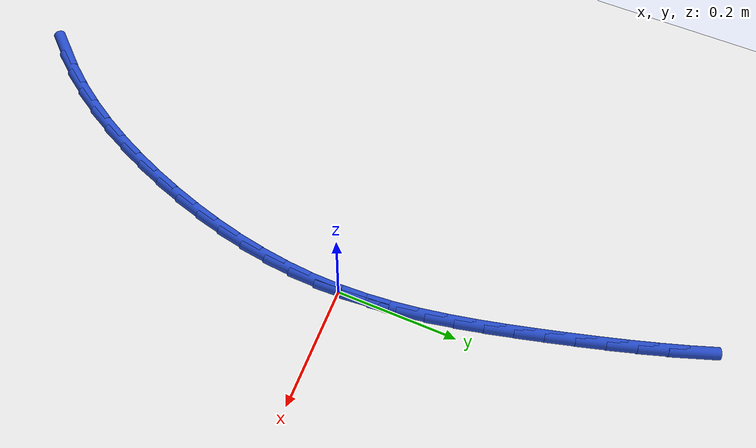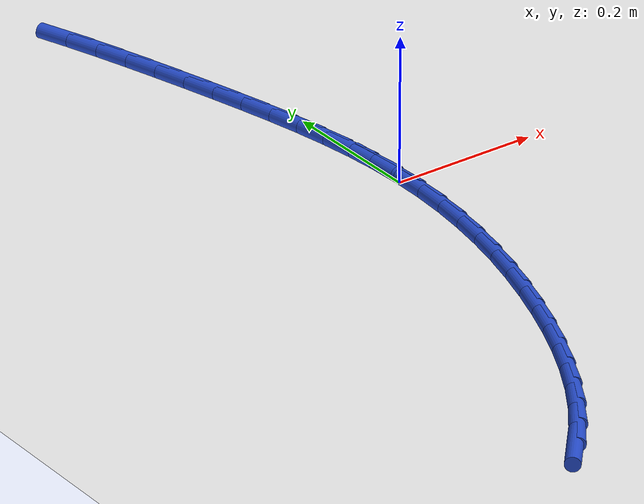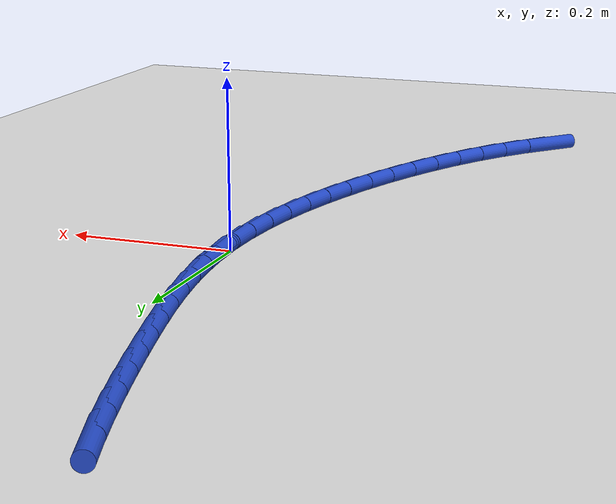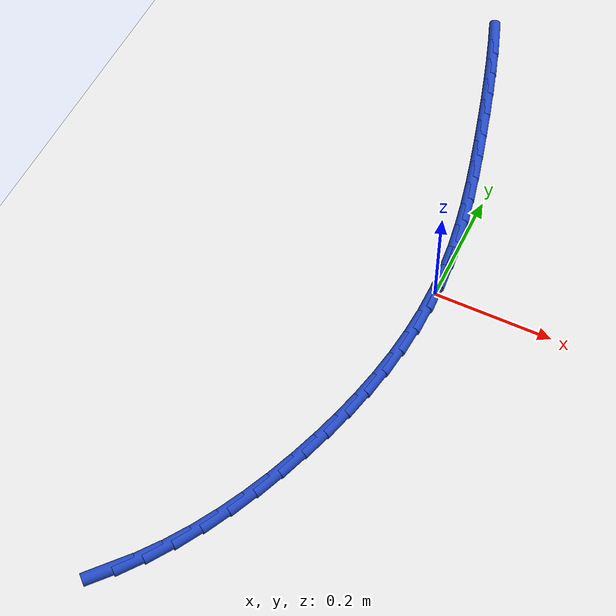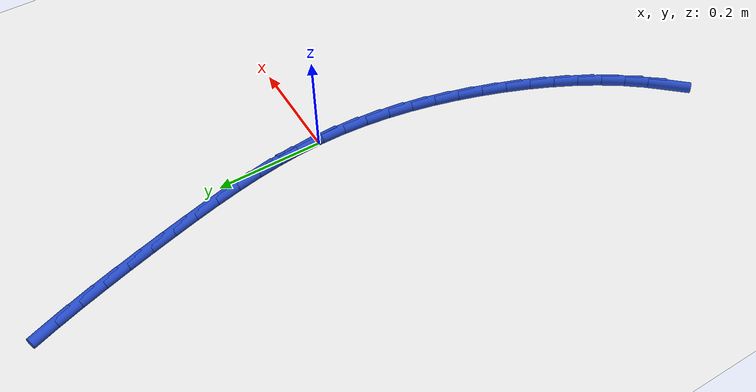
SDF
<sdf version="1.6">
 <world name="default">
  <model name="ground_plane">
   <static>1</static>
   <link name="link">
    <collision name="collision">
     <geometry><plane><normal>0 0 1</normal><size>100 100</size></plane></geometry>
     <surface><friction><ode><mu>100</mu><mu2>50</mu2></ode></friction></surface>
    </collision>
    <visual name="visual">
     <cast_shadows>0</cast_shadows>
     <geometry><plane><normal>0 0 1</normal><size>100 100</size></plane></geometry>
     <material>
      <script><uri>file://media/materials/scripts/gazebo.material</uri><name>Gazebo/WhiteGlow</name></script>
     </material>
    </visual>
   </link>
  </model>
  <model name="line">
   <link name="link_0">
    <pose>-1.214306433183765e-17 -2.0816681711721685e-17 0.01 0 1.57 -1.5239779968371987</pose>
    <collision name="collision">
     <geometry><cylinder><radius>0.01</radius><length>0.08</length></cylinder></geometry>
    </collision>
    <visual name="visual">
     <material>
      <script><name>Gazebo/Blue</name><uri>file://media/materials/scripts/gazebo.material</uri></script>
     </material>
     <geometry><cylinder><radius>0.01</radius><length>0.08</length></cylinder></geometry>
    </visual>
   </link>
   <link name="link_1">
    <pose>-0.0021245154504253992 0.04534469606206822 0.01 0 1.57 -1.4723712508912976</pose>
    <collision name="collision">
     <geometry><cylinder><radius>0.01</radius><length>0.08</length></cylinder></geometry>
    </collision>
    <visual name="visual">
     <material>
      <script><name>Gazebo/Blue</name><uri>file://media/materials/scripts/gazebo.material</uri></script>
     </material>
     <geometry><cylinder><radius>0.01</radius><length>0.08</length></cylinder></geometry>
    </visual>
   </link>
   <link name="link_2">
    <pose>-0.006593316319034097 0.09060105988212223 0.01 0 1.57 -1.4277021264202554</pose>
    <collision name="collision">
     <geometry><cylinder><radius>0.01</radius><length>0.08</length></cylinder></geometry>
    </collision>
    <visual name="visual">
     <material>
      <script><name>Gazebo/Blue</name><uri>file://media/materials/scripts/gazebo.material</uri></script>
     </material>
     <geometry><cylinder><radius>0.01</radius><length>0.08</length></cylinder></geometry>
    </visual>
   </link>
   <link name="link_3">
    <pose>-0.013106867148751604 0.13580927209531798 0.01 0 1.57 -1.3900747745297217</pose>
    <collision name="collision">
     <geometry><cylinder><radius>0.01</radius><length>0.08</length></cylinder></geometry>
    </collision>
    <visual name="visual">
     <material>
      <script><name>Gazebo/Blue</name><uri>file://media/materials/scripts/gazebo.material</uri></script>
     </material>
     <geometry><cylinder><radius>0.01</radius><length>0.08</length></cylinder></geometry>
    </visual>
   </link>
   <link name="link_4">
    <pose>-0.021365632482503442 0.18100951333681153 0.01 0 1.57 -1.3594540855634945</pose>
    <collision name="collision">
     <geometry><cylinder><radius>0.01</radius><length>0.08</length></cylinder></geometry>
    </collision>
    <visual name="visual">
     <material>
      <script><name>Gazebo/Blue</name><uri>file://media/materials/scripts/gazebo.material</uri></script>
     </material>
     <geometry><cylinder><radius>0.01</radius><length>0.08</length></cylinder></geometry>
    </visual>
   </link>
   <link name="link_5">
    <pose>-0.031070076863215074 0.2262419642417586 0.01 0 1.57 -1.3357225294616695</pose>
    <collision name="collision">
     <geometry><cylinder><radius>0.01</radius><length>0.08</length></cylinder></geometry>
    </collision>
    <visual name="visual">
     <material>
      <script><name>Gazebo/Blue</name><uri>file://media/materials/scripts/gazebo.material</uri></script>
     </material>
     <geometry><cylinder><radius>0.01</radius><length>0.08</length></cylinder></geometry>
    </visual>
   </link>
   <link name="link_6">
    <pose>-0.04192066483381203 0.27154680544531534 0.01 0 1.57 -1.3187257069923661</pose>
    <collision name="collision">
     <geometry><cylinder><radius>0.01</radius><length>0.08</length></cylinder></geometry>
    </collision>
    <visual name="visual">
     <material>
      <script><name>Gazebo/Blue</name><uri>file://media/materials/scripts/gazebo.material</uri></script>
     </material>
     <geometry><cylinder><radius>0.01</radius><length>0.08</length></cylinder></geometry>
    </visual>
   </link>
   <link name="link_7">
    <pose>-0.05361786093721979 0.31696421758263754 0.01 0 1.57 -1.308159948260188</pose>
    <collision name="collision">
     <geometry><cylinder><radius>0.01</radius><length>0.08</length></cylinder></geometry>
    </collision>
    <visual name="visual">
     <material>
      <script><name>Gazebo/Blue</name><uri>file://media/materials/scripts/gazebo.material</uri></script>
     </material>
     <geometry><cylinder><radius>0.01</radius><length>0.08</length></cylinder></geometry>
    </visual>
   </link>
   <link name="link_8">
    <pose>-0.06586847644041166 0.3625315450831043 0.01 0 1.57 -1.2996111981379848</pose>
    <collision name="collision">
     <geometry><cylinder><radius>0.01</radius><length>0.08</length></cylinder></geometry>
    </collision>
    <visual name="visual">
     <material>
      <script><name>Gazebo/Blue</name><uri>file://media/materials/scripts/gazebo.material</uri></script>
     </material>
     <geometry><cylinder><radius>0.01</radius><length>0.08</length></cylinder></geometry>
    </visual>
   </link>
   <link name="link_9">
    <pose>-0.07856656411448149 0.408202458431606 0.01 0 1.57 -1.2881421093520649</pose>
    <collision name="collision">
     <geometry><cylinder><radius>0.01</radius><length>0.08</length></cylinder></geometry>
    </collision>
    <visual name="visual">
     <material>
      <script><name>Gazebo/Blue</name><uri>file://media/materials/scripts/gazebo.material</uri></script>
     </material>
     <geometry><cylinder><radius>0.01</radius><length>0.08</length></cylinder></geometry>
    </visual>
   </link>
   <link name="link_10">
    <pose>-0.09181969453499594 0.453835211891065 0.01 0 1.57 -1.2734338293448058</pose>
    <collision name="collision">
     <geometry><cylinder><radius>0.01</radius><length>0.08</length></cylinder></geometry>
    </collision>
    <visual name="visual">
     <material>
      <script><name>Gazebo/Blue</name><uri>file://media/materials/scripts/gazebo.material</uri></script>
     </material>
     <geometry><cylinder><radius>0.01</radius><length>0.08</length></cylinder></geometry>
    </visual>
   </link>
   <link name="link_11">
    <pose>-0.10574706868791374 0.4992828623600799 0.01 0 1.57 -1.2553971416705523</pose>
    <collision name="collision">
     <geometry><cylinder><radius>0.01</radius><length>0.08</length></cylinder></geometry>
    </collision>
    <visual name="visual">
     <material>
      <script><name>Gazebo/Blue</name><uri>file://media/materials/scripts/gazebo.material</uri></script>
     </material>
     <geometry><cylinder><radius>0.01</radius><length>0.08</length></cylinder></geometry>
    </visual>
   </link>
   <link name="link_12">
    <pose>-0.12046788755919356 0.5443984667372487 0.01 0 1.57 -1.2339089826335756</pose>
    <collision name="collision">
     <geometry><cylinder><radius>0.01</radius><length>0.08</length></cylinder></geometry>
    </collision>
    <visual name="visual">
     <material>
      <script><name>Gazebo/Blue</name><uri>file://media/materials/scripts/gazebo.material</uri></script>
     </material>
     <geometry><cylinder><radius>0.01</radius><length>0.08</length></cylinder></geometry>
    </visual>
   </link>
   <link name="link_165">
    <pose>-0.2308420048764336 -0.63959557539281 0.01 0 1.57 0.8437210992109566</pose>
    <collision name="collision">
     <geometry><cylinder><radius>0.01</radius><length>0.08</length></cylinder></geometry>
    </collision>
    <visual name="visual">
     <material>
      <script><name>Gazebo/Blue</name><uri>file://media/materials/scripts/gazebo.material</uri></script>
     </material>
     <geometry><cylinder><radius>0.01</radius><length>0.08</length></cylinder></geometry>
    </visual>
   </link>
   <link name="link_166">
    <pose>-0.20116231137775148 -0.6062350146776944 0.01 0 1.57 0.9206180291716395</pose>
    <collision name="collision">
     <geometry><cylinder><radius>0.01</radius><length>0.08</length></cylinder></geometry>
    </collision>
    <visual name="visual">
     <material>
      <script><name>Gazebo/Blue</name><uri>file://media/materials/scripts/gazebo.material</uri></script>
     </material>
     <geometry><cylinder><radius>0.01</radius><length>0.08</length></cylinder></geometry>
    </visual>
   </link>
   <link name="link_167">
    <pose>-0.17373178593057195 -0.5701652730090847 0.01 0 1.57 0.9890722624301237</pose>
    <collision name="collision">
     <geometry><cylinder><radius>0.01</radius><length>0.08</length></cylinder></geometry>
    </collision>
    <visual name="visual">
     <material>
      <script><name>Gazebo/Blue</name><uri>file://media/materials/scripts/gazebo.material</uri></script>
     </material>
     <geometry><cylinder><radius>0.01</radius><length>0.08</length></cylinder></geometry>
    </visual>
   </link>
   <link name="link_168">
    <pose>-0.14847104895310442 -0.5317538083495367 0.01 0 1.57 1.049920299472159</pose>
    <collision name="collision">
     <geometry><cylinder><radius>0.01</radius><length>0.08</length></cylinder></geometry>
    </collision>
    <visual name="visual">
     <material>
      <script><name>Gazebo/Blue</name><uri>file://media/materials/scripts/gazebo.material</uri></script>
     </material>
     <geometry><cylinder><radius>0.01</radius><length>0.08</length></cylinder></geometry>
    </visual>
   </link>
   <link name="link_169">
    <pose>-0.125300720863558 -0.4913680786616061 0.01 0 1.57 1.1040476505589323</pose>
    <collision name="collision">
     <geometry><cylinder><radius>0.01</radius><length>0.08</length></cylinder></geometry>
    </collision>
    <visual name="visual">
     <material>
      <script><name>Gazebo/Blue</name><uri>file://media/materials/scripts/gazebo.material</uri></script>
     </material>
     <geometry><cylinder><radius>0.01</radius><length>0.08</length></cylinder></geometry>
    </visual>
   </link>
   <link name="link_170">
    <pose>-0.10414142208014152 -0.44937554190784723 0.01 0 1.57 1.1523116995040181</pose>
    <collision name="collision">
     <geometry><cylinder><radius>0.01</radius><length>0.08</length></cylinder></geometry>
    </collision>
    <visual name="visual">
     <material>
      <script><name>Gazebo/Blue</name><uri>file://media/materials/scripts/gazebo.material</uri></script>
     </material>
     <geometry><cylinder><radius>0.01</radius><length>0.08</length></cylinder></geometry>
    </visual>
   </link>
   <link name="link_171">
    <pose>-0.08491377302106512 -0.40614365605081815 0.01 0 1.57 1.1955026625837946</pose>
    <collision name="collision">
     <geometry><cylinder><radius>0.01</radius><length>0.08</length></cylinder></geometry>
    </collision>
    <visual name="visual">
     <material>
      <script><name>Gazebo/Blue</name><uri>file://media/materials/scripts/gazebo.material</uri></script>
     </material>
     <geometry><cylinder><radius>0.01</radius><length>0.08</length></cylinder></geometry>
    </visual>
   </link>
   <link name="link_172">
    <pose>-0.06753839410453753 -0.36203987905307305 0.01 0 1.57 1.2344988390885128</pose>
    <collision name="collision">
     <geometry><cylinder><radius>0.01</radius><length>0.08</length></cylinder></geometry>
    </collision>
    <visual name="visual">
     <material>
      <script><name>Gazebo/Blue</name><uri>file://media/materials/scripts/gazebo.material</uri></script>
     </material>
     <geometry><cylinder><radius>0.01</radius><length>0.08</length></cylinder></geometry>
    </visual>
   </link>
   <link name="link_173">
    <pose>-0.05194144569243261 -0.317423183242311 0.01 0 1.57 1.2729657698754762</pose>
    <collision name="collision">
     <geometry><cylinder><radius>0.01</radius><length>0.08</length></cylinder></geometry>
    </collision>
    <visual name="visual">
     <material>
      <script><name>Gazebo/Blue</name><uri>file://media/materials/scripts/gazebo.material</uri></script>
     </material>
     <geometry><cylinder><radius>0.01</radius><length>0.08</length></cylinder></geometry>
    </visual>
   </link>
   <link name="link_174">
    <pose>-0.038150793638373745 -0.2724967567509059 0.01 0 1.57 1.3138749814006943</pose>
    <collision name="collision">
     <geometry><cylinder><radius>0.01</radius><length>0.08</length></cylinder></geometry>
    </collision>
    <visual name="visual">
     <material>
      <script><name>Gazebo/Blue</name><uri>file://media/materials/scripts/gazebo.material</uri></script>
     </material>
     <geometry><cylinder><radius>0.01</radius><length>0.08</length></cylinder></geometry>
    </visual>
   </link>
   <link name="link_175">
    <pose>-0.026283493029170428 -0.2273271749021844 0.01 0 1.57 1.3574726329863998</pose>
    <collision name="collision">
     <geometry><cylinder><radius>0.01</radius><length>0.08</length></cylinder></geometry>
    </collision>
    <visual name="visual">
     <material>
      <script><name>Gazebo/Blue</name><uri>file://media/materials/scripts/gazebo.material</uri></script>
     </material>
     <geometry><cylinder><radius>0.01</radius><length>0.08</length></cylinder></geometry>
    </visual>
   </link>
   <link name="link_176">
    <pose>-0.016459622103222837 -0.18197638240189323 0.01 0 1.57 1.4038930935386738</pose>
    <collision name="collision">
     <geometry><cylinder><radius>0.01</radius><length>0.08</length></cylinder></geometry>
    </collision>
    <visual name="visual">
     <material>
      <script><name>Gazebo/Blue</name><uri>file://media/materials/scripts/gazebo.material</uri></script>
     </material>
     <geometry><cylinder><radius>0.01</radius><length>0.08</length></cylinder></geometry>
    </visual>
   </link>
   <link name="link_177">
    <pose>-0.008799259098931748 -0.13650632395578194 0.01 0 1.57 1.4532409931272363</pose>
    <collision name="collision">
     <geometry><cylinder><radius>0.01</radius><length>0.08</length></cylinder></geometry>
    </collision>
    <visual name="visual">
     <material>
      <script><name>Gazebo/Blue</name><uri>file://media/materials/scripts/gazebo.material</uri></script>
     </material>
     <geometry><cylinder><radius>0.01</radius><length>0.08</length></cylinder></geometry>
    </visual>
   </link>
   <link name="link_178">
    <pose>-0.0034224822546973354 -0.09097894426959748 0.01 0 1.57 1.5055784830119314</pose>
    <collision name="collision">
     <geometry><cylinder><radius>0.01</radius><length>0.08</length></cylinder></geometry>
    </collision>
    <visual name="visual">
     <material>
      <script><name>Gazebo/Blue</name><uri>file://media/materials/scripts/gazebo.material</uri></script>
     </material>
     <geometry><cylinder><radius>0.01</radius><length>0.08</length></cylinder></geometry>
    </visual>
   </link>
   <link name="link_179">
    <pose>-0.0004493698089199638 -0.045456188049087555 0.01 0 1.57 1.5609108702641024</pose>
    <collision name="collision">
     <geometry><cylinder><radius>0.01</radius><length>0.08</length></cylinder></geometry>
    </collision>
    <visual name="visual">
     <material>
      <script><name>Gazebo/Blue</name><uri>file://media/materials/scripts/gazebo.material</uri></script>
     </material>
     <geometry><cylinder><radius>0.01</radius><length>0.08</length></cylinder></geometry>
    </visual>
   </link>
   <link name="link_180">
    <pose>-1.214306433183765e-17 0.0 0.01 0 1.57 -1.522421046210822</pose>
    <collision name="collision">
     <geometry><cylinder><radius>0.01</radius><length>0.08</length></cylinder></geometry>
    </collision>
    <visual name="visual">
     <material>
      <script><name>Gazebo/Blue</name><uri>file://media/materials/scripts/gazebo.material</uri></script>
     </material>
     <geometry><cylinder><radius>0.01</radius><length>0.08</length></cylinder></geometry>
    </visual>
   </link>
   <link name="link_181">
    <pose>-0.002194451066337864 0.04532767517191745 0.01 0 1.57 -1.522421046210822</pose>
    <collision name="collision">
     <geometry><cylinder><radius>0.01</radius><length>0.08</length></cylinder></geometry>
    </collision>
    <visual name="visual">
     <material>
      <script><name>Gazebo/Blue</name><uri>file://media/materials/scripts/gazebo.material</uri></script>
     </material>
     <geometry><cylinder><radius>0.01</radius><length>0.08</length></cylinder></geometry>
    </visual>
   </link>
  </model>
 </world>
</sdf>
